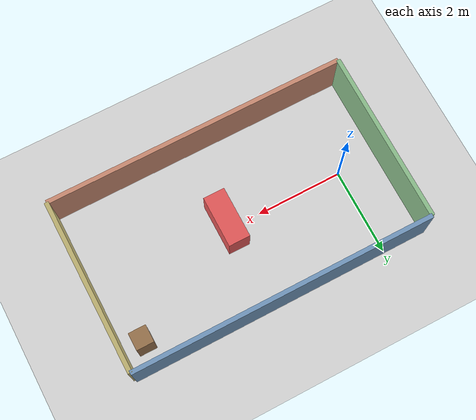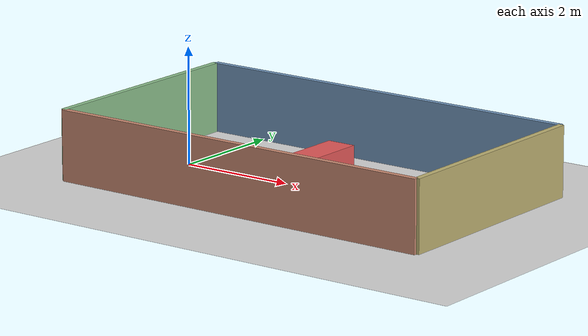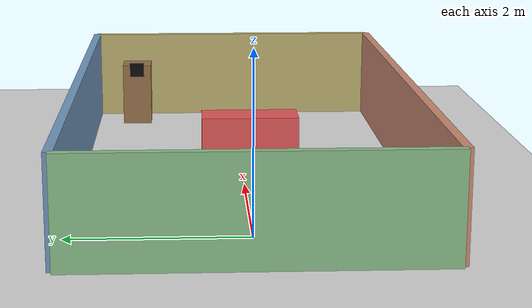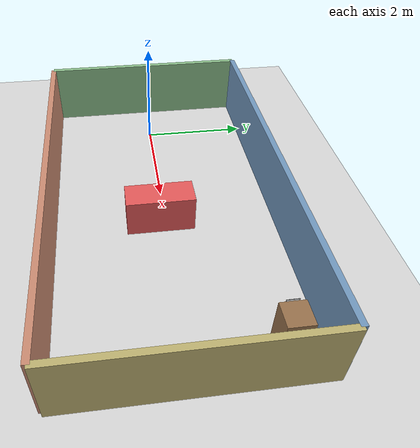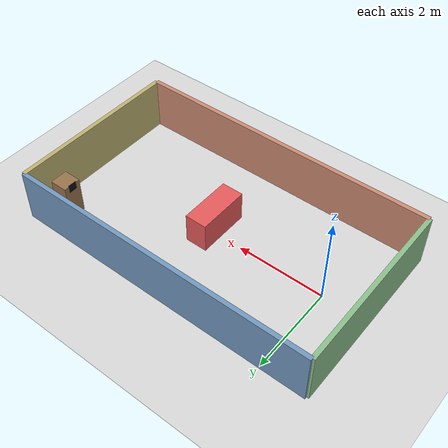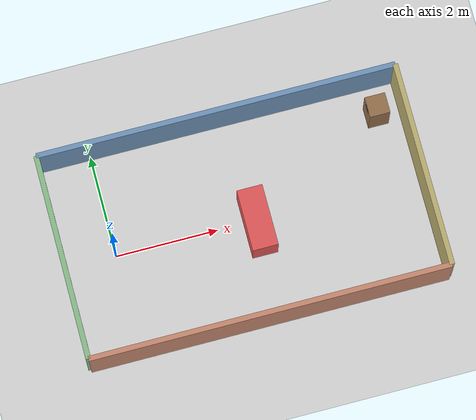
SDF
<sdf version="1.10">
 <world name="camera_nav">
  <physics name="dart" type="dart">
   <max_step_size>0.004</max_step_size>
   <real_time_factor>1.0</real_time_factor>
  </physics>
  <plugin filename="gz-sim-physics-system" name="gz::sim::systems::Physics"/>
  <plugin filename="gz-sim-sensors-system" name="gz::sim::systems::Sensors">
   <render_engine>ogre2</render_engine>
  </plugin>
  <plugin filename="gz-sim-scene-broadcaster-system" name="gz::sim::systems::SceneBroadcaster"/>
  <plugin filename="gz-sim-user-commands-system" name="gz::sim::systems::UserCommands"/>
  <scene><ambient>0.7 0.7 0.7 1</ambient><background>0.5 0.6 0.7 1</background><grid>false</grid></scene>
  <light type="directional" name="sun">
   <pose>3 0 6 0 0 0</pose>
   <diffuse>0.9 0.9 0.9 1</diffuse>
   <specular>0.2 0.2 0.2 1</specular>
   <direction>-0.3 0.2 -0.9</direction>
  </light>
  <model name="ground">
   <static>true</static>
   <link name="link">
    <collision name="c">
     <geometry><plane><normal>0 0 1</normal><size>40 40</size></plane></geometry>
     <surface><friction><ode><mu>1.0</mu><mu2>1.0</mu2></ode></friction></surface>
    </collision>
    <visual name="v">
     <geometry><plane><normal>0 0 1</normal><size>40 40</size></plane></geometry>
     <material><ambient>0.8 0.8 0.8 1</ambient><diffuse>0.85 0.85 0.85 1</diffuse></material>
    </visual>
   </link>
  </model>
  <model name="walls">
   <static>true</static>
   <link name="link">
    <collision name="cs">
     <pose>2.5 -2 0.6 0 0 0</pose>
     <geometry><box><size>7 0.1 1.2</size></box></geometry>
    </collision>
    <visual name="vs">
     <pose>2.5 -2 0.6 0 0 0</pose>
     <geometry><box><size>7 0.1 1.2</size></box></geometry>
     <material><ambient>0.75 0.5 0.4 1</ambient><diffuse>0.8 0.55 0.45 1</diffuse></material>
    </visual>
    <collision name="cn">
     <pose>2.5 2 0.6 0 0 0</pose>
     <geometry><box><size>7 0.1 1.2</size></box></geometry>
    </collision>
    <visual name="vn">
     <pose>2.5 2 0.6 0 0 0</pose>
     <geometry><box><size>7 0.1 1.2</size></box></geometry>
     <material><ambient>0.4 0.55 0.7 1</ambient><diffuse>0.45 0.6 0.75 1</diffuse></material>
    </visual>
    <collision name="cw">
     <pose>-1 0 0.6 0 0 0</pose>
     <geometry><box><size>0.1 4 1.2</size></box></geometry>
    </collision>
    <visual name="vw">
     <pose>-1 0 0.6 0 0 0</pose>
     <geometry><box><size>0.1 4 1.2</size></box></geometry>
     <material><ambient>0.5 0.7 0.5 1</ambient><diffuse>0.55 0.75 0.55 1</diffuse></material>
    </visual>
    <collision name="ce">
     <pose>6 0 0.6 0 0 0</pose>
     <geometry><box><size>0.1 4 1.2</size></box></geometry>
    </collision>
    <visual name="ve">
     <pose>6 0 0.6 0 0 0</pose>
     <geometry><box><size>0.1 4 1.2</size></box></geometry>
     <material><ambient>0.7 0.65 0.4 1</ambient><diffuse>0.75 0.7 0.45 1</diffuse></material>
    </visual>
   </link>
  </model>
  <model name="obstacle">
   <static>true</static>
   <link name="link">
    <collision name="c">
     <pose>2.75 -0.1 0.35 0 0 0</pose>
     <geometry><box><size>0.5 1.2 0.7</size></box></geometry>
    </collision>
    <visual name="v">
     <pose>2.75 -0.1 0.35 0 0 0</pose>
     <geometry><box><size>0.5 1.2 0.7</size></box></geometry>
     <material><ambient>0.85 0.3 0.3 1</ambient><diffuse>0.9 0.35 0.35 1</diffuse></material>
    </visual>
   </link>
  </model>
  <model name="qr_box">
   <static>true</static>
   <link name="link">
    <collision name="c">
     <pose>5.5 1.4 0.425 0 0 0</pose>
     <geometry><box><size>0.4 0.4 0.85</size></box></geometry>
    </collision>
    <visual name="v">
     <pose>5.5 1.4 0.425 0 0 0</pose>
     <geometry><box><size>0.4 0.4 0.85</size></box></geometry>
     <material><ambient>0.55 0.4 0.25 1</ambient><diffuse>0.6 0.45 0.3 1</diffuse></material>
    </visual>
    <visual name="qr_white">
     <pose>5.298 1.4 0.789 0 1.5708 0</pose>
     <geometry><box><size>0.18 0.18 0.004</size></box></geometry>
     <material><ambient>0.95 0.95 0.95 1</ambient><diffuse>1 1 1 1</diffuse></material>
    </visual>
    <visual name="qr_black">
     <pose>5.297 1.4 0.789 0 1.5708 0</pose>
     <geometry><box><size>0.20 0.20 0.003</size></box></geometry>
     <material><ambient>0.05 0.05 0.05 1</ambient><diffuse>0.05 0.05 0.05 1</diffuse></material>
    </visual>
   </link>
  </model>
 </world>
</sdf>
